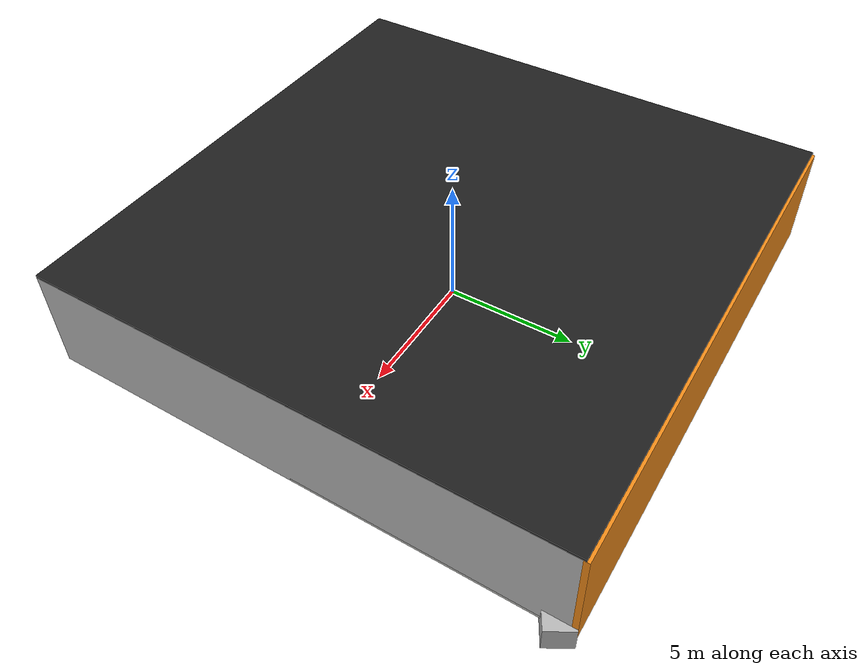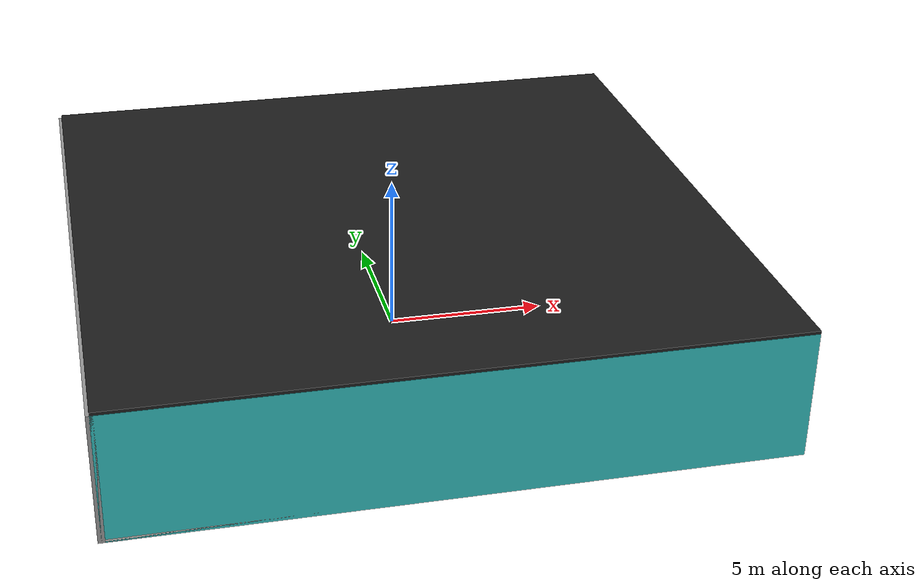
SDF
<sdf version="1.4">
 <world name="default">
  <physics type="ode">
   <max_step_size>0.001</max_step_size>
   <real_time_factor>1</real_time_factor>
   <real_time_update_rate>1000</real_time_update_rate>
   <gravity>0 0 -9.8</gravity>
  </physics>
  <scene><ambient>0.4 0.4 0.4 1</ambient><background>0.7 0.7 0.7 1</background><shadows>1</shadows></scene>
  <model name="Surrounding">
   <static>1</static>
   <link name="Ceiling">
    <collision name="Ceiling_Collision"><geometry><box><size>20 20 0.1</size></box></geometry></collision>
    <visual name="Ceiling_Visual">
     <geometry><box><size>20 20 0.1</size></box></geometry>
     <material>
      <script><uri>file://media/materials/scripts/gazebo.material</uri><name>Gazebo/FlatBlack</name></script>
     </material>
    </visual>
    <pose>0 0 4.05 0 0 0</pose>
   </link>
   <link name="Wall_South">
    <collision name="Wall_South_Collision">
     <geometry><box><size>20 0 4</size></box></geometry>
     <pose>0 0 2 0 -0 0</pose>
    </collision>
    <visual name="Wall_South_Visual">
     <pose>0 0 2 0 -0 0</pose>
     <geometry><box><size>20 0 4</size></box></geometry>
     <material>
      <script><uri>file://media/materials/scripts/gazebo.material</uri><name>Gazebo/Turquoise</name></script>
     </material>
    </visual>
    <velocity_decay><linear>0</linear><angular>0</angular></velocity_decay>
    <pose>0 -10 0 0 -0 0</pose>
   </link>
   <link name="Wall_East">
    <collision name="Wall_21_Collision">
     <geometry><box><size>20 0 4</size></box></geometry>
     <pose>0 0 2 0 -0 0</pose>
    </collision>
    <visual name="Wall_21_Visual">
     <pose>0 0 2 0 -0 0</pose>
     <geometry><box><size>20 0 4</size></box></geometry>
     <material>
      <script><uri>file://media/materials/scripts/gazebo.material</uri><name>Gazebo/CloudySky</name></script>
     </material>
    </visual>
    <velocity_decay><linear>0</linear><angular>0</angular></velocity_decay>
    <pose>10 0 0 0 -0 1.5708</pose>
   </link>
   <link name="Wall_North">
    <collision name="Wall_22_Collision">
     <geometry><box><size>20 0.2 4</size></box></geometry>
     <pose>0 0 2 0 -0 0</pose>
    </collision>
    <visual name="Wall_22_Visual">
     <pose>0 0 2 0 -0 0</pose>
     <geometry><box><size>20 0.2 4</size></box></geometry>
     <material>
      <script><uri>file://media/materials/scripts/gazebo.material</uri><name>Gazebo/Orange</name></script>
     </material>
    </visual>
    <velocity_decay><linear>0</linear><angular>0</angular></velocity_decay>
    <pose>0 10 0 0 -0 0</pose>
   </link>
   <link name="Wall_West">
    <collision name="Wall_23_Collision">
     <geometry><box><size>20 0.2 4</size></box></geometry>
     <pose>0 0 2 0 -0 0</pose>
    </collision>
    <visual name="Wall_23_Visual">
     <pose>0 0 2 0 -0 0</pose>
     <geometry><box><size>20 0.2 4</size></box></geometry>
     <material>
      <script><uri>file://media/materials/scripts/gazebo.material</uri><name>Gazebo/Grey</name></script>
     </material>
    </visual>
    <velocity_decay><linear>0</linear><angular>0</angular></velocity_decay>
    <pose>-10 0 0 0 0 -1.5708</pose>
   </link>
   <link name="Ground_link">
    <collision name="collision">
     <pose>0 0 .05 0 -0 0</pose>
     <geometry><box><size>20 20 0.1</size></box></geometry>
    </collision>
    <visual name="visual">
     <pose>0 0 .05 0 -0 0</pose>
     <geometry><box><size>20 20 0.1</size></box></geometry>
     <material>
      <script><uri>file://media/materials/scripts/gazebo.material</uri><name>Gazebo/CeilingTiled</name></script>
     </material>
    </visual>
   </link>
   <static>1</static>
  </model>
  <spherical_coordinates>
   <surface_model>EARTH_WGS84</surface_model>
   <latitude_deg>0</latitude_deg>
   <longitude_deg>0</longitude_deg>
   <elevation>0</elevation>
   <heading_deg>0</heading_deg>
  </spherical_coordinates>
  <light name="lightball_0" type="diffuse">
   <diffuse>0.8 0.8 0.8 1</diffuse>
   <specular>0.2 0.2 0.2 1</specular>
   <attenuation>
    <range>100</range>
    <constant>0.7</constant>
    <linear>0.01</linear>
    <quadratic>0.001</quadratic>
   </attenuation>
   <direction>-0.5 0.1 -0.9</direction>
   <pose>1.95554064868 -3.66595456872 1.14698344667 0 0 0</pose>
  </light>
  <light name="lightball_1" type="diffuse">
   <diffuse>0.8 0.8 0.8 1</diffuse>
   <specular>0.2 0.2 0.2 1</specular>
   <attenuation>
    <range>100</range>
    <constant>0.7</constant>
    <linear>0.01</linear>
    <quadratic>0.001</quadratic>
   </attenuation>
   <direction>-0.5 0.1 -0.9</direction>
   <pose>-1.03137192947 -0.0448838820081 0.526250829879 0 0 0</pose>
  </light>
  <light name="lightball_2" type="diffuse">
   <diffuse>0.8 0.8 0.8 1</diffuse>
   <specular>0.2 0.2 0.2 1</specular>
   <attenuation>
    <range>100</range>
    <constant>0.7</constant>
    <linear>0.01</linear>
    <quadratic>0.001</quadratic>
   </attenuation>
   <direction>-0.5 0.1 -0.9</direction>
   <pose>-3.86769287677 9.02776773215 3.25127204404 0 0 0</pose>
  </light>
  <light name="lightball_3" type="diffuse">
   <diffuse>0.8 0.8 0.8 1</diffuse>
   <specular>0.2 0.2 0.2 1</specular>
   <attenuation>
    <range>100</range>
    <constant>0.7</constant>
    <linear>0.01</linear>
    <quadratic>0.001</quadratic>
   </attenuation>
   <direction>-0.5 0.1 -0.9</direction>
   <pose>-2.8766203788 -3.33506009565 2.77914063563 0 0 0</pose>
  </light>
  <light name="lightball_4" type="diffuse">
   <diffuse>0.8 0.8 0.8 1</diffuse>
   <specular>0.2 0.2 0.2 1</specular>
   <attenuation>
    <range>100</range>
    <constant>0.7</constant>
    <linear>0.01</linear>
    <quadratic>0.001</quadratic>
   </attenuation>
   <direction>-0.5 0.1 -0.9</direction>
   <pose>4.70394960277 3.33035678672 1.60717607193 0 0 0</pose>
  </light>
  <light name="lightball_5" type="diffuse">
   <diffuse>0.8 0.8 0.8 1</diffuse>
   <specular>0.2 0.2 0.2 1</specular>
   <attenuation>
    <range>100</range>
    <constant>0.7</constant>
    <linear>0.01</linear>
    <quadratic>0.001</quadratic>
   </attenuation>
   <direction>-0.5 0.1 -0.9</direction>
   <pose>-2.18036880217 7.68349911641 3.4814545753 0 0 0</pose>
  </light>
  <light name="lightball_6" type="diffuse">
   <diffuse>0.8 0.8 0.8 1</diffuse>
   <specular>0.2 0.2 0.2 1</specular>
   <attenuation>
    <range>100</range>
    <constant>0.7</constant>
    <linear>0.01</linear>
    <quadratic>0.001</quadratic>
   </attenuation>
   <direction>-0.5 0.1 -0.9</direction>
   <pose>-2.27679846144 6.8607054885 1.47884859387 0 0 0</pose>
  </light>
  <light name="lightball_7" type="diffuse">
   <diffuse>0.8 0.8 0.8 1</diffuse>
   <specular>0.2 0.2 0.2 1</specular>
   <attenuation>
    <range>100</range>
    <constant>0.7</constant>
    <linear>0.01</linear>
    <quadratic>0.001</quadratic>
   </attenuation>
   <direction>-0.5 0.1 -0.9</direction>
   <pose>9.11014666428 8.94609956012 3.39762311668 0 0 0</pose>
  </light>
  <light name="lightball_8" type="diffuse">
   <diffuse>0.8 0.8 0.8 1</diffuse>
   <specular>0.2 0.2 0.2 1</specular>
   <attenuation>
    <range>100</range>
    <constant>0.7</constant>
    <linear>0.01</linear>
    <quadratic>0.001</quadratic>
   </attenuation>
   <direction>-0.5 0.1 -0.9</direction>
   <pose>7.79223422996 -9.83573831245 3.54848796539 0 0 0</pose>
  </light>
  <include>
   <uri>model://robocup_3Dsim_goal</uri>
   <pose>-5.026437271 -6.77042104323 0 0 0 2.76984957202</pose>
  </include>
  <include>
   <uri>model://construction_cone</uri>
   <pose>-3.43105593435 -5.37244198958 0 0 0 0.945174543829</pose>
  </include>
  <include>
   <uri>model://robocup_3Dsim_goal</uri>
   <pose>-1.71104162031 2.40040005562 0 0 0 2.40329450785</pose>
  </include>
  <include>
   <uri>model://textured_shapes</uri>
   <pose>8.56720107863 8.68818058304 0 0 0 2.09573632653</pose>
  </include>
 </world>
</sdf>

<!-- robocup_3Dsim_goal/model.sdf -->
<sdf version="1.5">
  <model name="robocup_3d_goal">
    <static>true</static>
    <link name="left_post">
      <pose>0 1.05 0.45 0 0 0</pose>
      <collision name="collision">
        <geometry>
          <cylinder>
            <radius>0.05</radius>
            <length>0.9</length>
          </cylinder>
        </geometry>
      </collision>
      <visual name="visual">
        <geometry>
          <cylinder>
            <radius>0.05</radius>
            <length>0.9</length>
          </cylinder>
        </geometry>
        <material>
          <script>
            <uri>file://media/materials/scripts/gazebo.material</uri>
            <name>Gazebo/ZincYellow</name>
          </script>
        </material>
      </visual>
    </link>
    <link name="left_support_horiz_lower">
      <pose>0.30 1.05 0.01 0 0 0</pose>
      <collision name="collision">
        <geometry>
          <box>
            <size>0.50 0.02 0.02</size>
          </box>
        </geometry>
      </collision>
      <visual name="visual">
        <geometry>
          <box>
            <size>0.50 0.02 0.02</size>
          </box>
        </geometry>
        <material>
          <script>
            <uri>file://media/materials/scripts/gazebo.material</uri>
            <name>Gazebo/White</name>
          </script>
        </material>
      </visual>
    </link>
    <link name="left_support_horiz_upper">
      <pose>0.30 1.05 0.79 0 0 0</pose>
      <collision name="collision">
        <geometry>
          <box>
            <size>0.50 0.02 0.02</size>
          </box>
        </geometry>
      </collision>
      <visual name="visual">
        <geometry>
          <box>
            <size>0.50 0.02 0.02</size>
          </box>
        </geometry>
        <material>
          <script>
            <uri>file://media/materials/scripts/gazebo.material</uri>
            <name>Gazebo/White</name>
          </script>
        </material>
      </visual>
    </link>
    <link name="left_support_vertical">
      <pose>0.56 1.05 0.4 0 1.5708 0</pose>
      <collision name="collision">
        <geometry>
          <box>
            <size>0.80 0.02 0.02</size>
          </box>
        </geometry>
      </collision>
      <visual name="visual">
        <geometry>
          <box>
            <size>0.80 0.02 0.02</size>
          </box>
        </geometry>
        <material>
          <script>
            <uri>file://media/materials/scripts/gazebo.material</uri>
            <name>Gazebo/White</name>
          </script>
        </material>
      </visual>
    </link>
    <link name="right_support_horiz_lower">
      <pose>0.30 -1.05 0.01 0 0 0</pose>
      <collision name="collision">
        <geometry>
          <box>
            <size>0.50 0.02 0.02</size>
          </box>
        </geometry>
      </collision>
      <visual name="visual">
        <geometry>
          <box>
            <size>0.50 0.02 0.02</size>
          </box>
        </geometry>
        <material>
          <script>
            <uri>file://media/materials/scripts/gazebo.material</uri>
            <name>Gazebo/White</name>
          </script>
        </material>
      </visual>
    </link>
    <link name="right_support_horiz_upper">
      <pose>0.30 -1.05 0.79 0 0 0</pose>
      <collision name="collision">
        <geometry>
          <box>
            <size>0.50 0.02 0.02</size>
          </box>
        </geometry>
      </collision>
      <visual name="visual">
        <geometry>
          <box>
            <size>0.50 0.02 0.02</size>
          </box>
        </geometry>
        <material>
          <script>
            <uri>file://media/materials/scripts/gazebo.material</uri>
            <name>Gazebo/White</name>
          </script>
        </material>
      </visual>
    </link>
    <link name="right_support_vertical">
      <pose>0.56 -1.05 0.4 0 1.5708 0</pose>
      <collision name="collision">
        <geometry>
          <box>
            <size>0.80 0.02 0.02</size>
          </box>
        </geometry>
      </collision>
      <visual name="visual">
        <geometry>
          <box>
            <size>0.80 0.02 0.02</size>
          </box>
        </geometry>
        <material>
          <script>
            <uri>file://media/materials/scripts/gazebo.material</uri>
            <name>Gazebo/White</name>
          </script>
        </material>
      </visual>
    </link>
    <link name="center_support_horiz_lower">
      <pose>0.56 0 0.01 0 1.5708 0</pose>
      <collision name="collision">
        <geometry>
          <box>
            <size>0.02 2.08 0.02</size>
          </box>
        </geometry>
      </collision>
      <visual name="visual">
        <geometry>
          <box>
            <size>0.02 2.08 0.02</size>
          </box>
        </geometry>
        <material>
          <script>
            <uri>file://media/materials/scripts/gazebo.material</uri>
            <name>Gazebo/White</name>
          </script>
        </material>
      </visual>
    </link>
    <link name="center_support_horiz_upper">
      <pose>0.56 0 0.79 0 1.5708 0</pose>
      <collision name="collision">
        <geometry>
          <box>
            <size>0.02 2.08 0.02</size>
          </box>
        </geometry>
      </collision>
      <visual name="visual">
        <geometry>
          <box>
            <size>0.02 2.08 0.02</size>
          </box>
        </geometry>
        <material>
          <script>
            <uri>file://media/materials/scripts/gazebo.material</uri>
            <name>Gazebo/White</name>
          </script>
        </material>
      </visual>
    </link>
    <link name="right_post">
      <pose>0 -1.05 0.45 0 0 0</pose>
      <collision name="collision">
        <geometry>
          <cylinder>
            <radius>0.05</radius>
            <length>0.9</length>
          </cylinder>
        </geometry>
      </collision>
      <visual name="visual">
        <geometry>
          <cylinder>
            <radius>0.05</radius>
            <length>0.9</length>
          </cylinder>
        </geometry>
        <material>
          <script>
            <uri>file://media/materials/scripts/gazebo.material</uri>
            <name>Gazebo/ZincYellow</name>
          </script>
        </material>
      </visual>
    </link>
    <link name="crossbar">
      <pose>0 0 0.85 1.57 1.57 0</pose>
      <collision name="collision">
        <geometry>
          <cylinder>
            <radius>0.05</radius>
            <length>2.0</length>
          </cylinder>
        </geometry>
      </collision>
      <visual name="visual">
        <geometry>
          <cylinder>
            <radius>0.05</radius>
            <length>2.0</length>
          </cylinder>
        </geometry>
        <material>
          <script>
            <uri>file://media/materials/scripts/gazebo.material</uri>
            <name>Gazebo/ZincYellow</name>
          </script>
        </material>
      </visual>
    </link>
    <link name="center_net">
      <pose>0.56 0 0.40 0 0 0</pose>
      <collision name="collision">
        <geometry>
          <box>
            <size>0.01 2.1 0.80</size>
          </box>
        </geometry>
      </collision>
      <visual name="visual">
        <geometry>
          <box>
            <size>0.01 2.1 0.80</size>
          </box>
        </geometry>
        <material>
          <script>
            <uri>model://../model_source/models/robocup09_spl_field/materials/scripts/</uri>
            <uri>model://../model_source/models/robocup09_spl_field/materials/textures/</uri>
            <name>RoboCup/Net</name>
          </script>
        </material>
      </visual>
    </link>
    <link name="left_net">
      <pose>0.30 1.05 0.40 0 0 0</pose>
      <collision name="collision">
        <geometry>
          <box>
            <size>0.50 0.01 0.76</size>
          </box>
        </geometry>
      </collision>
      <visual name="visual">
        <geometry>
          <box>
            <size>0.50 0.01 0.76</size>
          </box>
        </geometry>
        <material>
          <script>
            <uri>model://../model_source/models/robocup09_spl_field/materials/scripts/</uri>
            <uri>model://../model_source/models/robocup09_spl_field/materials/textures/</uri>
            <name>RoboCup/Net</name>
          </script>
        </material>
      </visual>
    </link>
    <link name="right_net">
      <pose>0.30 -1.05 0.40 0 0 0</pose>
      <collision name="collision">
        <geometry>
          <box>
            <size>0.50 0.01 0.76</size>
          </box>
        </geometry>
      </collision>
      <visual name="visual">
        <geometry>
          <box>
            <size>0.50 0.01 0.76</size>
          </box>
        </geometry>
        <material>
          <script>
            <uri>model://../model_source/models/robocup09_spl_field/materials/scripts/</uri>
            <uri>model://../model_source/models/robocup09_spl_field/materials/textures/</uri>
            <name>RoboCup/Net</name>
          </script>
        </material>
      </visual>
    </link>
  </model>
</sdf>

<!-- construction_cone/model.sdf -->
<sdf version="1.5">
  <model name="Construction Cone">
    <link name="link">
      <collision name="collision">
        <geometry>
          <mesh>
            <scale>10 10 10</scale>
            <uri>file://isr-testbed/construction_cone/meshes/construction_cone.dae</uri>
          </mesh>
        </geometry>
      </collision>
      <visual name="visual">
        <geometry>
          <mesh>
            <scale>10 10 10</scale>
            <uri>file://isr-testbed/construction_cone/meshes/construction_cone.dae</uri>
          </mesh>
        </geometry>
      </visual>
    </link>
  </model>
</sdf>

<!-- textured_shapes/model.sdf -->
<sdf version="1.6">
  <model name="textured_shapes">
    <pose>0 0 0.5 0 0 0</pose>
    <link name="box">
      <pose>0 -1.5 0 0 0 0</pose>
      <collision name="collision">
        <geometry>
          <box>
            <size>1 1 1</size>
          </box>
        </geometry>
      </collision>
      <visual name="visual">
        <geometry>
          <box>
            <size>1 1 1</size>
          </box>
        </geometry>
        <material>
          <script>
            <uri>model://../model_source/models/textured_shapes/materials/scripts</uri>
            <uri>model://../model_source/models/textured_shapes/materials/textures</uri>
            <name>TexturedShape/Squares</name>
          </script>
        </material>
      </visual>
    </link>
    <link name="sphere">
      <collision name="collision">
        <geometry>
          <sphere>
            <radius>0.5</radius>
          </sphere>
        </geometry>
      </collision>
      <visual name="visual">
        <geometry>
          <sphere>
            <radius>0.5</radius>
          </sphere>
        </geometry>
        <material>
          <script>
            <uri>model://../model_source/models/textured_shapes/materials/scripts</uri>
            <uri>model://../model_source/models/textured_shapes/materials/textures</uri>
            <name>TexturedShape/Squares</name>
          </script>
        </material>
      </visual>
    </link>
    <link name="cylinder">
      <pose>0 1.5 0 0 0 0</pose>
      <collision name="collision">
        <geometry>
          <cylinder>
            <radius>0.5</radius>
            <length>1</length>
          </cylinder>
        </geometry>
      </collision>
      <visual name="visual">
        <geometry>
          <cylinder>
            <radius>0.5</radius>
            <length>1</length>
          </cylinder>
        </geometry>
        <material>
          <script>
            <uri>model://../model_source/models/textured_shapes/materials/scripts</uri>
            <uri>model://../model_source/models/textured_shapes/materials/textures</uri>
            <name>TexturedShape/Squares</name>
          </script>
        </material>
      </visual>
    </link>
  </model>
</sdf>
